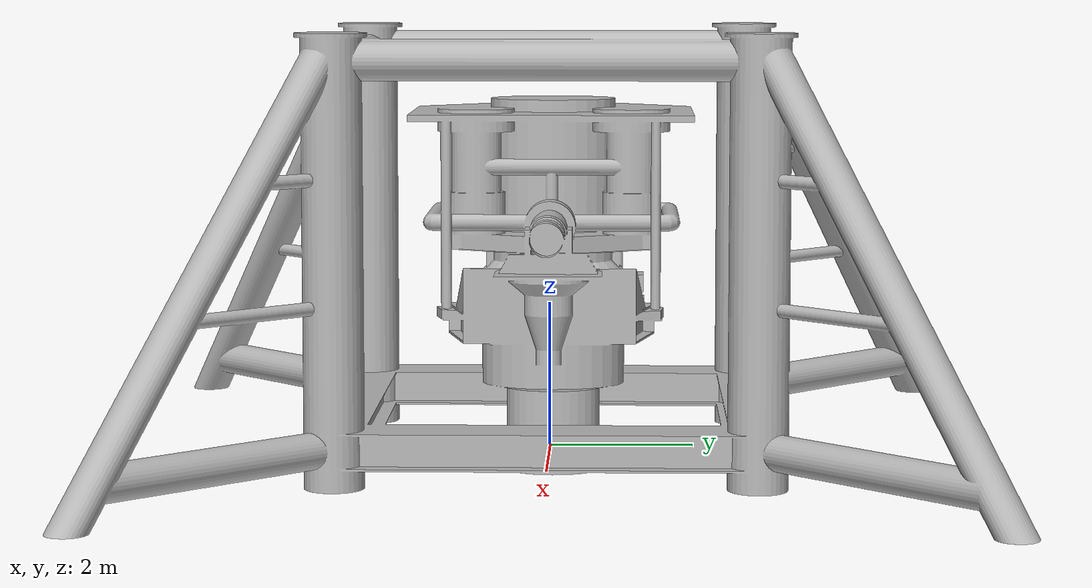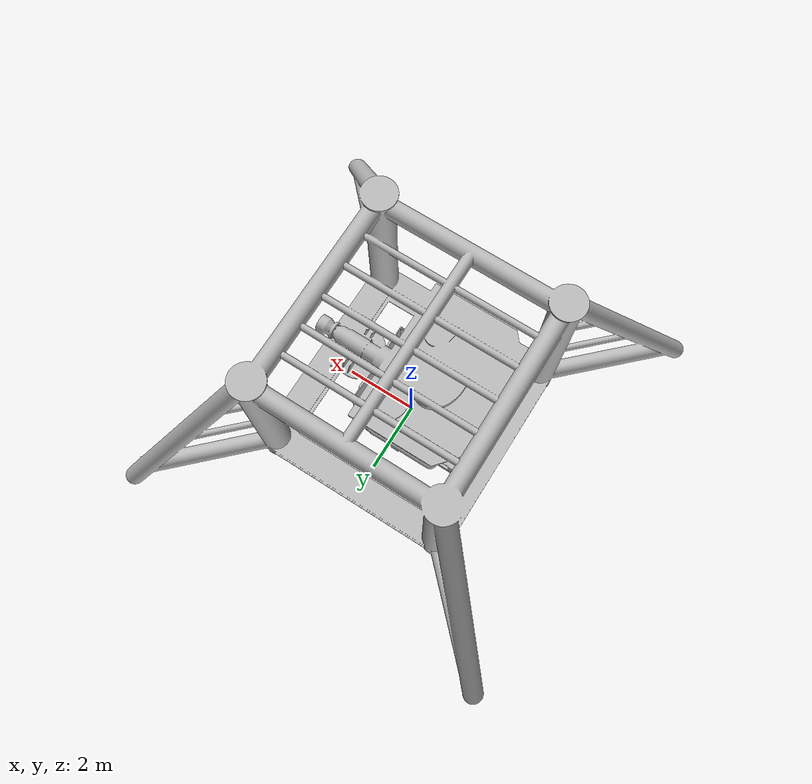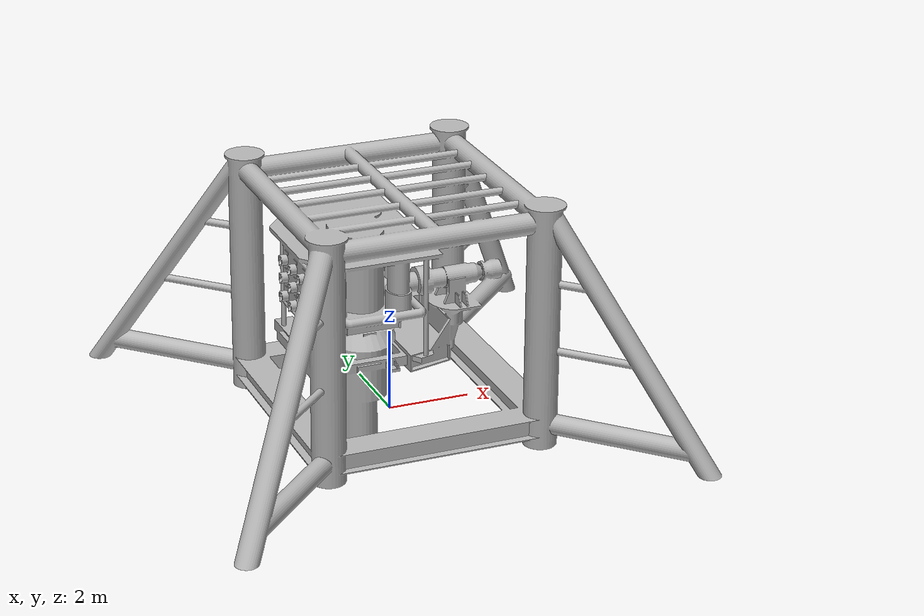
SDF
<?xml version="1.0"?>
<sdf version="1.4">
    <model name="xmastree">
        <pose>0 0 0 0 0 0</pose>
        <static>true</static>
        <link name="xmastree_body">
            <visual name="visual">
                <geometry>
                    <mesh>
                        <uri>model://xmastree/visual.osgb</uri>
                    </mesh>
                </geometry>
            </visual>
            <collision name="collision">
                <geometry>
                    <mesh>
                        <uri>model://xmastree/collision.stl</uri>
                    </mesh>
                </geometry>
            </collision>
            <inertial>
                <pose>0 0 -1 0 0 0</pose>
                <inertia>
                    <ixx>0.0</ixx>
                    <ixy>0</ixy>
                    <ixz>0.0</ixz>
                    <iyy>0.0</iyy>
                    <iyz>0</iyz>
                    <izz>0.0</izz>
                </inertia>
                <mass>1.0</mass>
            </inertial>
        </link>
    </model>
</sdf>
